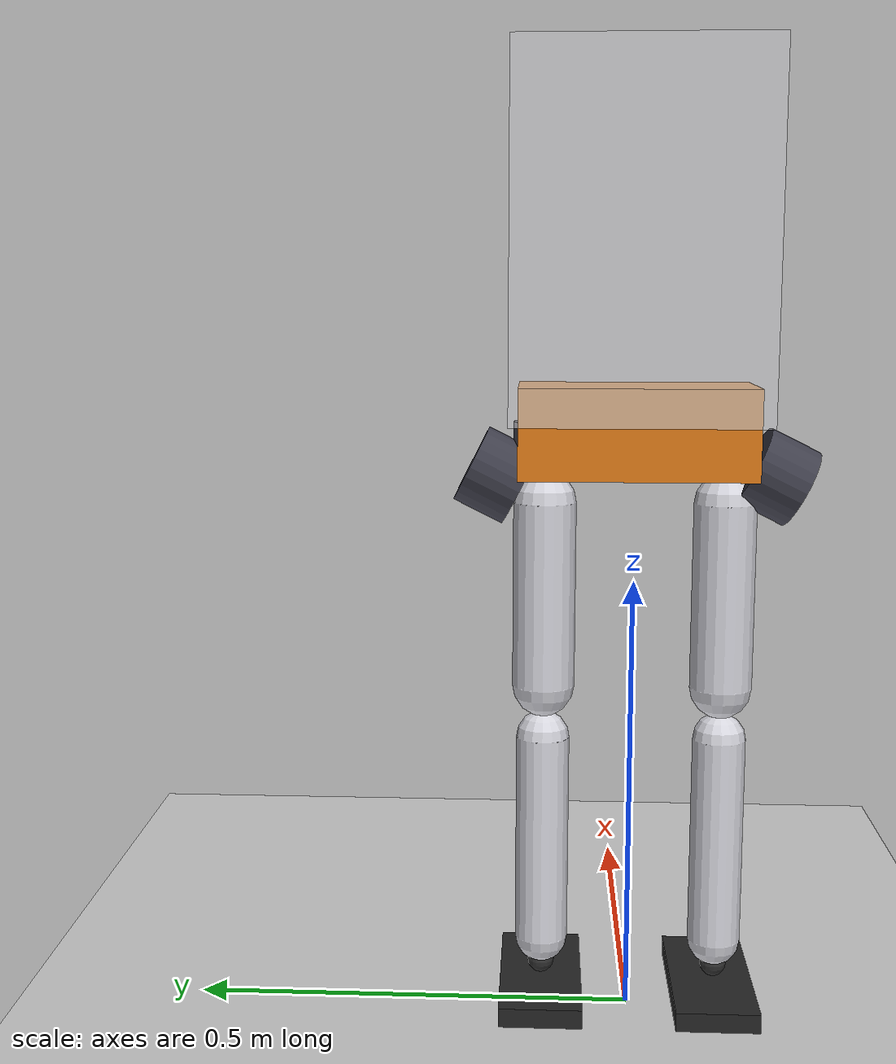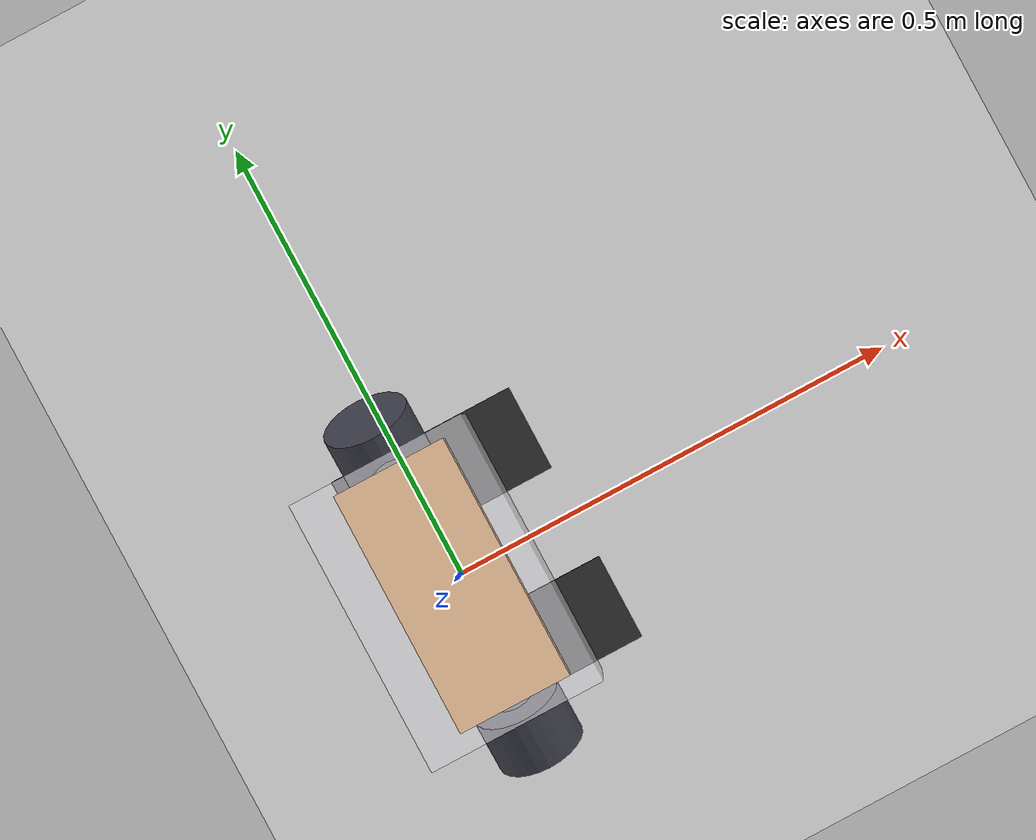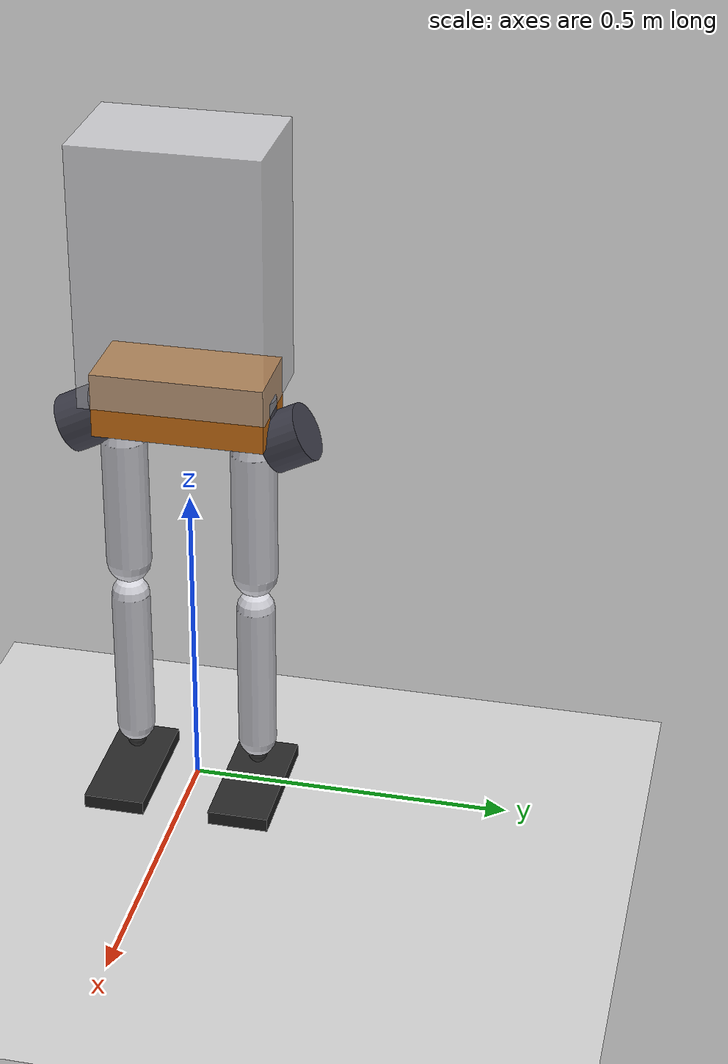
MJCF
<mujoco model="jx1_analysis">
  <compiler angle="radian" autolimits="true"/>
  <option timestep="0.001" gravity="0 0 -9.81" integrator="implicitfast"/>
  <worldbody>
    <geom name="floor" type="plane" size="5 5 0.1" rgba=".8 .8 .8 1"/>
    <light pos="0 0 3" dir="0 0 -1"/>
    <body name="pelvis" pos="0 0 0.62000">
      <freejoint name="root"/>
      <inertial pos="0 0 0.0644958" mass="2.142" diaginertia="0.0194158 0.00300579 0.0197723"/>
      <geom type="box" size="0.06 0.13 0.05" pos="0 0 0.05" rgba=".9 .5 .1 1" contype="0" conaffinity="0"/>
      <site name="imu" pos="0 0 0.05" size="0.01"/>
      <body name="upper_body" pos="0 0 0">
        <inertial pos="0 0 0.26" mass="12" diaginertia="0.2925 0.2425 0.13"/>
        <geom type="box" size="0.09 0.14 0.2" pos="0 0 0.26" rgba=".9 .9 .92 .6" contype="0" conaffinity="0"/>
      </body>
      <body name="l_hip_yaw_link" pos="0 0.1 0">
<inertial pos="-0.0466667 0 0.0037037" mass="1.08" diaginertia="0.00146781 0.00146981 0.00145129"/>
<joint name="l_hip_yaw" axis="0 0 1" range="-0.698132 0.785398" limited="true" armature="0.01" damping="0.0"/>
<geom type="cylinder" size="0.035 0.03" pos="0 0 0.03" rgba=".3 .3 .35 1" contype="0" conaffinity="0"/>
<body name="l_hip_roll_link" pos="0 0 0">
<inertial pos="0 0.0531481 0" mass="1.08" diaginertia="0.00113758 0.00144929 0.00113758"/>
<joint name="l_hip_roll" axis="1 0 0" range="-0.436332 0.785398" limited="true" armature="0.02" damping="0.0"/>
<geom type="cylinder" size="0.045 0.03" euler="90 0 0" pos="0 0.055 0" rgba=".25 .25 .3 1" contype="0" conaffinity="0"/>
<body name="l_thigh" pos="0 0 0">
<inertial pos="0 0 -0.248008" mass="1.33" diaginertia="0.00502342 0.00541143 0.00121545"/>
<joint name="l_hip_pitch" axis="0 1 0" range="-2.007129 0.610865" limited="true" armature="0.02" damping="0.0"/>
<geom type="capsule" fromto="0 0 -0.03 0 0 -0.24000000000000002" size="0.035" rgba=".85 .85 .88 1" contype="0" conaffinity="0"/>
<body name="l_shin" pos="0 0 -0.27">
<inertial pos="0 0 -0.139043" mass="1.692" diaginertia="0.00903756 0.00841645 0.00209336"/>
<joint name="l_knee" axis="0 1 0" range="0.000000 2.094395" limited="true" armature="0.02" damping="0.0"/>
<geom type="capsule" fromto="0 0 -0.03 0 0 -0.27" size="0.03" rgba=".85 .85 .88 1" contype="0" conaffinity="0"/>
<body name="l_ankle_cross" pos="0 0 -0.3">
<inertial pos="0 0 0" mass="0.05" diaginertia="7.5e-06 7.5e-06 7.5e-06"/>
<joint name="l_ankle_pitch" axis="0 1 0" range="-0.959931 0.523599" limited="true" armature="0.02" damping="0.0"/>
<geom type="sphere" size="0.015" rgba=".2 .2 .2 1" contype="0" conaffinity="0"/>
<body name="l_foot" pos="0 0 0">
<inertial pos="0.03 0 -0.035" mass="0.35" diaginertia="0.000289479 0.0013125 0.00154948"/>
<joint name="l_ankle_roll" axis="1 0 0" range="-0.349066 0.349066" limited="true" armature="0.025313" damping="0.0"/>
<geom name="l_foot_geom" type="box" size="0.105 0.0475 0.011" pos="0.03 0 -0.03900000000000001" rgba=".15 .15 .15 1" friction="1.0 0.02 0.001"/><site name="l_sole" pos="0 0 -0.05" size="0.01"/>
</body></body></body></body></body></body>
      <body name="r_hip_yaw_link" pos="0 -0.1 0">
<inertial pos="-0.0466667 -0 0.0037037" mass="1.08" diaginertia="0.00146781 0.00146981 0.00145129"/>
<joint name="r_hip_yaw" axis="0 0 1" range="-0.785398 0.698132" limited="true" armature="0.01" damping="0.0"/>
<geom type="cylinder" size="0.035 0.03" pos="0 0 0.03" rgba=".3 .3 .35 1" contype="0" conaffinity="0"/>
<body name="r_hip_roll_link" pos="0 0 0">
<inertial pos="0 -0.0531481 0" mass="1.08" diaginertia="0.00113758 0.00144929 0.00113758"/>
<joint name="r_hip_roll" axis="1 0 0" range="-0.785398 0.436332" limited="true" armature="0.02" damping="0.0"/>
<geom type="cylinder" size="0.045 0.03" euler="90 0 0" pos="0 -0.055 0" rgba=".25 .25 .3 1" contype="0" conaffinity="0"/>
<body name="r_thigh" pos="0 0 0">
<inertial pos="0 -0 -0.248008" mass="1.33" diaginertia="0.00502342 0.00541143 0.00121545"/>
<joint name="r_hip_pitch" axis="0 1 0" range="-2.007129 0.610865" limited="true" armature="0.02" damping="0.0"/>
<geom type="capsule" fromto="0 0 -0.03 0 0 -0.24000000000000002" size="0.035" rgba=".85 .85 .88 1" contype="0" conaffinity="0"/>
<body name="r_shin" pos="0 0 -0.27">
<inertial pos="0 -0 -0.139043" mass="1.692" diaginertia="0.00903756 0.00841645 0.00209336"/>
<joint name="r_knee" axis="0 1 0" range="0.000000 2.094395" limited="true" armature="0.02" damping="0.0"/>
<geom type="capsule" fromto="0 0 -0.03 0 0 -0.27" size="0.03" rgba=".85 .85 .88 1" contype="0" conaffinity="0"/>
<body name="r_ankle_cross" pos="0 0 -0.3">
<inertial pos="0 -0 0" mass="0.05" diaginertia="7.5e-06 7.5e-06 7.5e-06"/>
<joint name="r_ankle_pitch" axis="0 1 0" range="-0.959931 0.523599" limited="true" armature="0.02" damping="0.0"/>
<geom type="sphere" size="0.015" rgba=".2 .2 .2 1" contype="0" conaffinity="0"/>
<body name="r_foot" pos="0 0 0">
<inertial pos="0.03 -0 -0.035" mass="0.35" diaginertia="0.000289479 0.0013125 0.00154948"/>
<joint name="r_ankle_roll" axis="1 0 0" range="-0.349066 0.349066" limited="true" armature="0.025313" damping="0.0"/>
<geom name="r_foot_geom" type="box" size="0.105 0.0475 0.011" pos="0.03 0 -0.03900000000000001" rgba=".15 .15 .15 1" friction="1.0 0.02 0.001"/><site name="r_sole" pos="0 0 -0.05" size="0.01"/>
</body></body></body></body></body></body>
    </body>
  </worldbody>

</mujoco>
